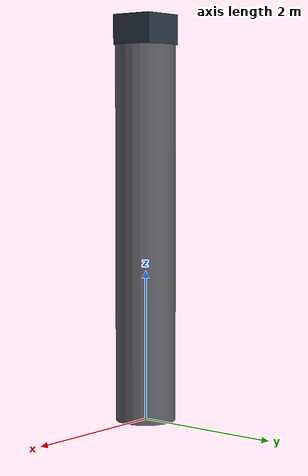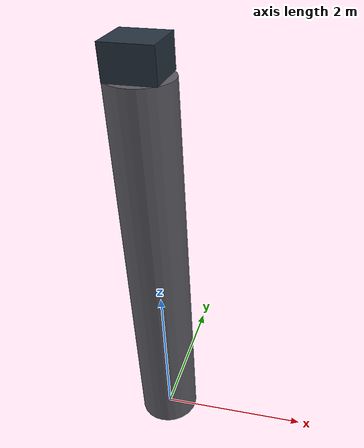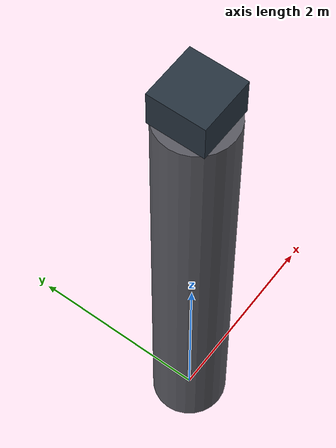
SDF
<?xml version="1.0" encoding="UTF-8"?>
<sdf version='1.9'>
  <model name='ground_radar_station'>
    <static>true</static>
    <pose>0 0 0 0 0 0</pose>

    <!-- Tower base -->
    <link name='base_link'>
      <pose>0 0 2.5 0 0 0</pose>
      <collision name='tower_collision'>
        <geometry>
          <cylinder>
            <radius>0.4</radius>
            <length>5.0</length>
          </cylinder>
        </geometry>
      </collision>
      <visual name='tower_visual'>
        <geometry>
          <cylinder>
            <radius>0.4</radius>
            <length>5.0</length>
          </cylinder>
        </geometry>
        <material>
          <diffuse>0.35 0.35 0.38 1</diffuse>
        </material>
      </visual>
    </link>

    <!-- Radar head (visual only; targets come from radar_sim truth stub) -->
    <link name='radar_link'>
      <pose>0 0 5.2 0 0 0</pose>
      <visual name='radar_head_visual'>
        <geometry>
          <box>
            <size>0.6 0.6 0.4</size>
          </box>
        </geometry>
        <material>
          <diffuse>0.15 0.2 0.25 1</diffuse>
        </material>
      </visual>
    </link>

    <joint name='radar_mount_joint' type='fixed'>
      <parent>base_link</parent>
      <child>radar_link</child>
      <pose>0 0 2.7 0 0 0</pose>
    </joint>
  </model>
</sdf>
